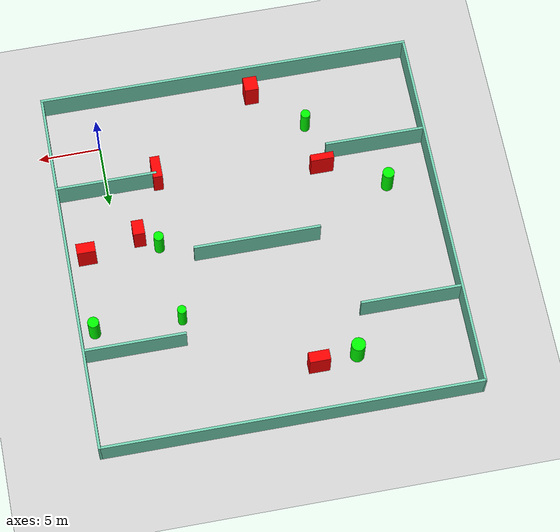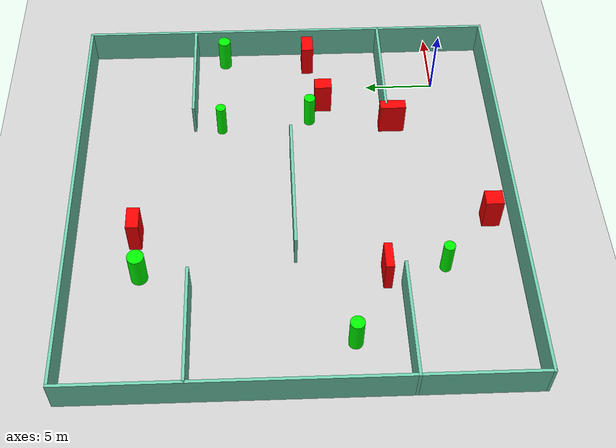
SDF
<sdf version="1.7">
 <world name="default">
  <light name="sun" type="directional">
   <pose>0 0 10 0 -0 0</pose>
   <diffuse>0.8 0.8 0.8 1</diffuse>
   <specular>0.2 0.2 0.2 1</specular>
   <attenuation>
    <range>1000</range>
    <constant>0.9</constant>
    <linear>0.01</linear>
    <quadratic>0.001</quadratic>
   </attenuation>
   <direction>-0.5 0.1 -0.9</direction>
   <spot><inner_angle>0</inner_angle><outer_angle>0</outer_angle><falloff>0</falloff></spot>
  </light>
  <model name="ground_plane">
   <static>1</static>
   <link name="link">
    <collision name="collision">
     <geometry><plane><normal>0 0 1</normal><size>100 100</size></plane></geometry>
     <surface>
      <contact><collide_bitmask>65535</collide_bitmask></contact>
      <friction><ode><mu>100</mu><mu2>50</mu2></ode></friction>
     </surface>
    </collision>
    <visual name="visual">
     <cast_shadows>0</cast_shadows>
     <geometry><plane><normal>0 0 1</normal><size>100 100</size></plane></geometry>
     <material>
      <script><uri>file://media/materials/scripts/gazebo.material</uri><name>Gazebo/Grey</name></script>
     </material>
    </visual>
   </link>
  </model>
  <gravity>0 0 -9.8</gravity>
  <magnetic_field>6e-06 2.3e-05 -4.2e-05</magnetic_field>
  <atmosphere type="adiabatic"/>
  <physics type="ode">
   <max_step_size>0.001</max_step_size>
   <real_time_factor>1</real_time_factor>
   <real_time_update_rate>1000</real_time_update_rate>
  </physics>
  <scene><ambient>0.4 0.4 0.4 1</ambient><background>0.7 0.7 0.7 1</background><shadows>1</shadows></scene>
  <spherical_coordinates>
   <surface_model>EARTH_WGS84</surface_model>
   <latitude_deg>0</latitude_deg>
   <longitude_deg>0</longitude_deg>
   <elevation>0</elevation>
   <heading_deg>0</heading_deg>
  </spherical_coordinates>
  <model name="my_base_walls">
   <link name="Wall_10">
    <collision name="Wall_10_Collision">
     <geometry><box><size>8.2 0.2 2.5</size></box></geometry>
     <pose>0 0 1.25 0 -0 0</pose>
    </collision>
    <visual name="Wall_10_Visual">
     <pose>0 0 1.25 0 -0 0</pose>
     <geometry><box><size>8.2 0.2 2.5</size></box></geometry>
     <material>
      <script><uri>file://media/materials/scripts/gazebo.material</uri><name>Gazebo/Grey</name></script>
      <ambient>0.435294 0.796078 0.67451 1</ambient>
     </material>
     <meta><layer>0</layer></meta>
    </visual>
    <pose>-11 -7 0 0 -0 0</pose>
   </link>
   <link name="Wall_12">
    <collision name="Wall_12_Collision">
     <geometry><box><size>8.2 0.2 2.5</size></box></geometry>
     <pose>0 0 1.25 0 -0 0</pose>
    </collision>
    <visual name="Wall_12_Visual">
     <pose>0 0 1.25 0 -0 0</pose>
     <geometry><box><size>8.2 0.2 2.5</size></box></geometry>
     <material>
      <script><uri>file://media/materials/scripts/gazebo.material</uri><name>Gazebo/Grey</name></script>
      <ambient>0.435294 0.796078 0.67451 1</ambient>
     </material>
     <meta><layer>0</layer></meta>
    </visual>
    <pose>-11 7 0 0 -0 0</pose>
   </link>
   <link name="Wall_14">
    <collision name="Wall_14_Collision">
     <geometry><box><size>8.2 0.2 2.5</size></box></geometry>
     <pose>0 0 1.25 0 -0 0</pose>
    </collision>
    <visual name="Wall_14_Visual">
     <pose>0 0 1.25 0 -0 0</pose>
     <geometry><box><size>8.2 0.2 2.5</size></box></geometry>
     <material>
      <script><uri>file://media/materials/scripts/gazebo.material</uri><name>Gazebo/Grey</name></script>
      <ambient>0.435294 0.796078 0.67451 1</ambient>
     </material>
     <meta><layer>0</layer></meta>
    </visual>
    <pose>11 7 0 0 -0 3.14159</pose>
   </link>
   <link name="Wall_16">
    <collision name="Wall_16_Collision">
     <geometry><box><size>10.2 0.2 2.5</size></box></geometry>
     <pose>0 0 1.25 0 -0 0</pose>
    </collision>
    <visual name="Wall_16_Visual">
     <pose>0 0 1.25 0 -0 0</pose>
     <geometry><box><size>10.2 0.2 2.5</size></box></geometry>
     <material>
      <script><uri>file://media/materials/scripts/gazebo.material</uri><name>Gazebo/Grey</name></script>
      <ambient>0.435294 0.796078 0.67451 1</ambient>
     </material>
     <meta><layer>0</layer></meta>
    </visual>
    <pose>0 0 0 0 -0 3.14159</pose>
   </link>
   <link name="Wall_2">
    <collision name="Wall_2_Collision">
     <geometry><box><size>30.2 0.2 2.5</size></box></geometry>
     <pose>0 0 1.25 0 -0 0</pose>
    </collision>
    <visual name="Wall_2_Visual">
     <pose>0 0 1.25 0 -0 0</pose>
     <geometry><box><size>30.2 0.2 2.5</size></box></geometry>
     <material>
      <script><uri>file://media/materials/scripts/gazebo.material</uri><name>Gazebo/Grey</name></script>
      <ambient>0.435294 0.796078 0.67451 1</ambient>
     </material>
     <meta><layer>0</layer></meta>
    </visual>
    <pose>0 -15 0 0 -0 3.14159</pose>
   </link>
   <link name="Wall_3">
    <collision name="Wall_3_Collision">
     <geometry><box><size>30.2 0.2 2.5</size></box></geometry>
     <pose>0 0 1.25 0 -0 0</pose>
    </collision>
    <visual name="Wall_3_Visual">
     <pose>0 0 1.25 0 -0 0</pose>
     <geometry><box><size>30.2 0.2 2.5</size></box></geometry>
     <material>
      <script><uri>file://media/materials/scripts/gazebo.material</uri><name>Gazebo/Grey</name></script>
      <ambient>0.435294 0.796078 0.67451 1</ambient>
     </material>
     <meta><layer>0</layer></meta>
    </visual>
    <pose>-15 0 0 0 -0 1.5708</pose>
   </link>
   <link name="Wall_4">
    <collision name="Wall_4_Collision">
     <geometry><box><size>30.2 0.2 2.5</size></box></geometry>
     <pose>0 0 1.25 0 -0 0</pose>
    </collision>
    <visual name="Wall_4_Visual">
     <pose>0 0 1.25 0 -0 0</pose>
     <geometry><box><size>30.2 0.2 2.5</size></box></geometry>
     <material>
      <script><uri>file://media/materials/scripts/gazebo.material</uri><name>Gazebo/Grey</name></script>
      <ambient>0.435294 0.796078 0.67451 1</ambient>
     </material>
     <meta><layer>0</layer></meta>
    </visual>
    <pose>0 15 0 0 -0 0</pose>
   </link>
   <link name="Wall_6">
    <collision name="Wall_6_Collision">
     <geometry><box><size>30.2 0.2 2.5</size></box></geometry>
     <pose>0 0 1.25 0 -0 0</pose>
    </collision>
    <visual name="Wall_6_Visual">
     <pose>0 0 1.25 0 -0 0</pose>
     <geometry><box><size>30.2 0.2 2.5</size></box></geometry>
     <material>
      <script><uri>file://media/materials/scripts/gazebo.material</uri><name>Gazebo/Grey</name></script>
      <ambient>0.435294 0.796078 0.67451 1</ambient>
     </material>
     <meta><layer>0</layer></meta>
    </visual>
    <pose>15 0 0 0 -0 1.5708</pose>
   </link>
   <link name="Wall_8">
    <collision name="Wall_8_Collision">
     <geometry><box><size>8.2 0.2 2.5</size></box></geometry>
     <pose>0 0 1.25 0 -0 0</pose>
    </collision>
    <visual name="Wall_8_Visual">
     <pose>0 0 1.25 0 -0 0</pose>
     <geometry><box><size>8.2 0.2 2.5</size></box></geometry>
     <material>
      <script><uri>file://media/materials/scripts/gazebo.material</uri><name>Gazebo/Grey</name></script>
      <ambient>0.435294 0.796078 0.67451 1</ambient>
     </material>
     <meta><layer>0</layer></meta>
    </visual>
    <pose>11 -7 0 0 -0 3.14159</pose>
   </link>
   <static>1</static>
   <pose>-11 11 0 0 -0 0</pose>
  </model>
  <model name="cylinder1">
   <static>1</static>
   <link name="link">
    <inertial>
     <mass>1</mass>
     <inertia><ixx>0.5</ixx><ixy>0</ixy><ixz>0</ixz><iyy>0.5</iyy><iyz>0</iyz><izz>1</izz></inertia>
    </inertial>
    <collision name="collision">
     <geometry><cylinder><radius>0.5617635213428492</radius><length>2.5</length></cylinder></geometry>
    </collision>
    <visual name="visual">
     <geometry><cylinder><radius>0.5617635213428492</radius><length>2.5</length></cylinder></geometry>
     <material>
      <ambient>0 1 0 1</ambient>
      <diffuse>0 1 0 1</diffuse>
      <specular>0.1 0.1 0.1 1</specular>
      <emissive>0 0 0 0</emissive>
     </material>
    </visual>
   </link>
   <pose>-17.006954365853705 21.36820454039955 1.25 0 0 0</pose>
  </model>
  <model name="cylinder2">
   <static>1</static>
   <link name="link">
    <inertial>
     <mass>1</mass>
     <inertia><ixx>0.5</ixx><ixy>0</ixy><ixz>0</ixz><iyy>0.5</iyy><iyz>0</iyz><izz>1</izz></inertia>
    </inertial>
    <collision name="collision">
     <geometry><cylinder><radius>0.4730717717589601</radius><length>2.5</length></cylinder></geometry>
    </collision>
    <visual name="visual">
     <geometry><cylinder><radius>0.4730717717589601</radius><length>2.5</length></cylinder></geometry>
     <material>
      <ambient>0 1 0 1</ambient>
      <diffuse>0 1 0 1</diffuse>
      <specular>0.1 0.1 0.1 1</specular>
      <emissive>0 0 0 0</emissive>
     </material>
    </visual>
   </link>
   <pose>-22.3457940777612 7.437054345980336 1.25 0 0 0</pose>
  </model>
  <model name="cylinder3">
   <static>1</static>
   <link name="link">
    <inertial>
     <mass>1</mass>
     <inertia><ixx>0.5</ixx><ixy>0</ixy><ixz>0</ixz><iyy>0.5</iyy><iyz>0</iyz><izz>1</izz></inertia>
    </inertial>
    <collision name="collision">
     <geometry><cylinder><radius>0.3525193994754418</radius><length>2.5</length></cylinder></geometry>
    </collision>
    <visual name="visual">
     <geometry><cylinder><radius>0.3525193994754418</radius><length>2.5</length></cylinder></geometry>
     <material>
      <ambient>0 1 0 1</ambient>
      <diffuse>0 1 0 1</diffuse>
      <specular>0.1 0.1 0.1 1</specular>
      <emissive>0 0 0 0</emissive>
     </material>
    </visual>
   </link>
   <pose>-4.0722789823721826 16.022006269529996 1.25 0 0 0</pose>
  </model>
  <model name="cylinder4">
   <static>1</static>
   <link name="link">
    <inertial>
     <mass>1</mass>
     <inertia><ixx>0.5</ixx><ixy>0</ixy><ixz>0</ixz><iyy>0.5</iyy><iyz>0</iyz><izz>1</izz></inertia>
    </inertial>
    <collision name="collision">
     <geometry><cylinder><radius>0.45151620329820613</radius><length>2.5</length></cylinder></geometry>
    </collision>
    <visual name="visual">
     <geometry><cylinder><radius>0.45151620329820613</radius><length>2.5</length></cylinder></geometry>
     <material>
      <ambient>0 1 0 1</ambient>
      <diffuse>0 1 0 1</diffuse>
      <specular>0.1 0.1 0.1 1</specular>
      <emissive>0 0 0 0</emissive>
     </material>
    </visual>
   </link>
   <pose>2.872216218759469 15.81500532287934 1.25 0 0 0</pose>
  </model>
  <model name="cylinder5">
   <static>1</static>
   <link name="link">
    <inertial>
     <mass>1</mass>
     <inertia><ixx>0.5</ixx><ixy>0</ixy><ixz>0</ixz><iyy>0.5</iyy><iyz>0</iyz><izz>1</izz></inertia>
    </inertial>
    <collision name="collision">
     <geometry><cylinder><radius>0.39984019485032596</radius><length>2.5</length></cylinder></geometry>
    </collision>
    <visual name="visual">
     <geometry><cylinder><radius>0.39984019485032596</radius><length>2.5</length></cylinder></geometry>
     <material>
      <ambient>0 1 0 1</ambient>
      <diffuse>0 1 0 1</diffuse>
      <specular>0.1 0.1 0.1 1</specular>
      <emissive>0 0 0 0</emissive>
     </material>
    </visual>
   </link>
   <pose>-3.327212052372495 9.532900006015083 1.25 0 0 0</pose>
  </model>
  <model name="cylinder6">
   <static>1</static>
   <link name="link">
    <inertial>
     <mass>1</mass>
     <inertia><ixx>0.5</ixx><ixy>0</ixy><ixz>0</ixz><iyy>0.5</iyy><iyz>0</iyz><izz>1</izz></inertia>
    </inertial>
    <collision name="collision">
     <geometry><cylinder><radius>0.38266321124650937</radius><length>2.5</length></cylinder></geometry>
    </collision>
    <visual name="visual">
     <geometry><cylinder><radius>0.38266321124650937</radius><length>2.5</length></cylinder></geometry>
     <material>
      <ambient>0 1 0 1</ambient>
      <diffuse>0 1 0 1</diffuse>
      <specular>0.1 0.1 0.1 1</specular>
      <emissive>0 0 0 0</emissive>
     </material>
    </visual>
   </link>
   <pose>-16.82596899661928 1.0461761435975099 1.25 0 0 0</pose>
  </model>
  <model name="box1">
   <static>1</static>
   <link name="link">
    <inertial>
     <mass>1</mass>
     <inertia><ixx>0.083</ixx><ixy>0</ixy><ixz>0</ixz><iyy>0.083</iyy><iyz>0</iyz><izz>0.083</izz></inertia>
    </inertial>
    <collision name="collision">
     <geometry><box><size>1.129423755220853 1.2174484267224674 2.5</size></box></geometry>
    </collision>
    <visual name="visual">
     <geometry><box><size>1.129423755220853 1.2174484267224674 2.5</size></box></geometry>
     <material>
      <ambient>1 0 0 1</ambient>
      <diffuse>1 0 0 1</diffuse>
      <specular>0.1 0.1 0.1 1</specular>
      <emissive>0 0 0 0</emissive>
     </material>
    </visual>
    <sensor name="my_contact" type="contact">
     <contact><collision>box_collision</collision><topic>__default_topic__</topic></contact>
    </sensor>
   </link>
   <pose>-12.962245727704984 -2.476003648864672 1.25 0 0 0</pose>
  </model>
  <model name="box2">
   <static>1</static>
   <link name="link">
    <inertial>
     <mass>1</mass>
     <inertia><ixx>0.083</ixx><ixy>0</ixy><ixz>0</ixz><iyy>0.083</iyy><iyz>0</iyz><izz>0.083</izz></inertia>
    </inertial>
    <collision name="collision">
     <geometry><box><size>0.9489734778502641 1.2370157405725746 2.5</size></box></geometry>
    </collision>
    <visual name="visual">
     <geometry><box><size>0.9489734778502641 1.2370157405725746 2.5</size></box></geometry>
     <material>
      <ambient>1 0 0 1</ambient>
      <diffuse>1 0 0 1</diffuse>
      <specular>0.1 0.1 0.1 1</specular>
      <emissive>0 0 0 0</emissive>
     </material>
    </visual>
    <sensor name="my_contact" type="contact">
     <contact><collision>box_collision</collision><topic>__default_topic__</topic></contact>
    </sensor>
   </link>
   <pose>-1.8612373174498167 8.482511387542534 1.25 0 0 0</pose>
  </model>
  <model name="box3">
   <static>1</static>
   <link name="link">
    <inertial>
     <mass>1</mass>
     <inertia><ixx>0.083</ixx><ixy>0</ixy><ixz>0</ixz><iyy>0.083</iyy><iyz>0</iyz><izz>0.083</izz></inertia>
    </inertial>
    <collision name="collision">
     <geometry><box><size>1.4954644867895563 0.8548370942523177 2.5</size></box></geometry>
    </collision>
    <visual name="visual">
     <geometry><box><size>1.4954644867895563 0.8548370942523177 2.5</size></box></geometry>
     <material>
      <ambient>1 0 0 1</ambient>
      <diffuse>1 0 0 1</diffuse>
      <specular>0.1 0.1 0.1 1</specular>
      <emissive>0 0 0 0</emissive>
     </material>
    </visual>
    <sensor name="my_contact" type="contact">
     <contact><collision>box_collision</collision><topic>__default_topic__</topic></contact>
    </sensor>
   </link>
   <pose>2.4871433838662824 9.475660543301178 1.25 0 0 0</pose>
  </model>
  <model name="box4">
   <static>1</static>
   <link name="link">
    <inertial>
     <mass>1</mass>
     <inertia><ixx>0.083</ixx><ixy>0</ixy><ixz>0</ixz><iyy>0.083</iyy><iyz>0</iyz><izz>0.083</izz></inertia>
    </inertial>
    <collision name="collision">
     <geometry><box><size>1.6594494440506447 0.8509008699359495 2.5</size></box></geometry>
    </collision>
    <visual name="visual">
     <geometry><box><size>1.6594494440506447 0.8509008699359495 2.5</size></box></geometry>
     <material>
      <ambient>1 0 0 1</ambient>
      <diffuse>1 0 0 1</diffuse>
      <specular>0.1 0.1 0.1 1</specular>
      <emissive>0 0 0 0</emissive>
     </material>
    </visual>
    <sensor name="my_contact" type="contact">
     <contact><collision>box_collision</collision><topic>__default_topic__</topic></contact>
    </sensor>
   </link>
   <pose>-13.85190154680486 21.758524134306874 1.25 0 0 0</pose>
  </model>
  <model name="box5">
   <static>1</static>
   <link name="link">
    <inertial>
     <mass>1</mass>
     <inertia><ixx>0.083</ixx><ixy>0</ixy><ixz>0</ixz><iyy>0.083</iyy><iyz>0</iyz><izz>0.083</izz></inertia>
    </inertial>
    <collision name="collision">
     <geometry><box><size>1.8758689385085547 0.5578491837353862 2.5</size></box></geometry>
    </collision>
    <visual name="visual">
     <geometry><box><size>1.8758689385085547 0.5578491837353862 2.5</size></box></geometry>
     <material>
      <ambient>1 0 0 1</ambient>
      <diffuse>1 0 0 1</diffuse>
      <specular>0.1 0.1 0.1 1</specular>
      <emissive>0 0 0 0</emissive>
     </material>
    </visual>
    <sensor name="my_contact" type="contact">
     <contact><collision>box_collision</collision><topic>__default_topic__</topic></contact>
    </sensor>
   </link>
   <pose>-17.400610313708214 5.040254157489599 1.25 0 0 0</pose>
  </model>
  <model name="box6">
   <static>1</static>
   <link name="link">
    <inertial>
     <mass>1</mass>
     <inertia><ixx>0.083</ixx><ixy>0</ixy><ixz>0</ixz><iyy>0.083</iyy><iyz>0</iyz><izz>0.083</izz></inertia>
    </inertial>
    <collision name="collision">
     <geometry><box><size>0.7769944645798506 1.8386487327691148 2.5</size></box></geometry>
    </collision>
    <visual name="visual">
     <geometry><box><size>0.7769944645798506 1.8386487327691148 2.5</size></box></geometry>
     <material>
      <ambient>1 0 0 1</ambient>
      <diffuse>1 0 0 1</diffuse>
      <specular>0.1 0.1 0.1 1</specular>
      <emissive>0 0 0 0</emissive>
     </material>
    </visual>
    <sensor name="my_contact" type="contact">
     <contact><collision>box_collision</collision><topic>__default_topic__</topic></contact>
    </sensor>
   </link>
   <pose>-4.14637097293307 3.5169426114211744 1.25 0 0 0</pose>
  </model>
 </world>
</sdf>
